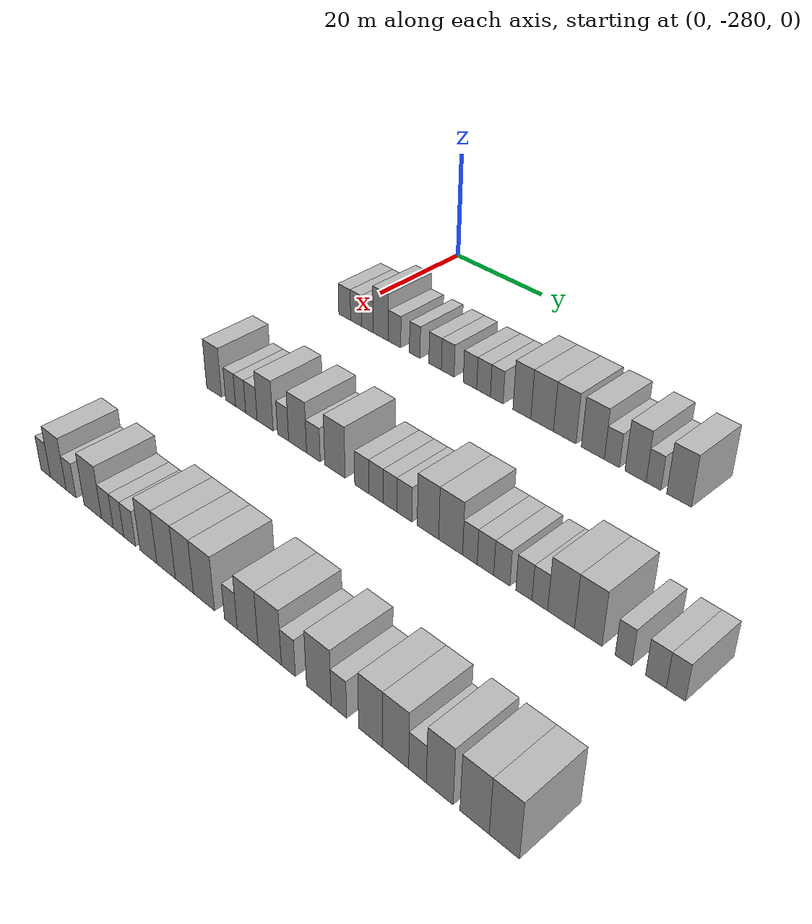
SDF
<sdf version="1.6">
 <world name="default">
  <model name="building_1">
   <static>1</static>
   <pose>25.0000 -278.5228 0 0.000000 0.000000 0.000000</pose>
   <link name="link">
    <pose>0 0 3.00 0 0 0</pose>
    <collision name="collision"><geometry><box><size>10.0000 2.9545 6.0000</size></box></geometry></collision>
    <visual name="visual">
     <cast_shadows>0</cast_shadows>
     <geometry><box><size>10.0000 2.9545 6.0000</size></box></geometry>
     <material>
      <script>
       <uri>model://HANNAS_wall/materials/scripts</uri>
       <uri>model://HANNAS_wall/materials/textures</uri>
       <name>vrc/HANNAS_wall</name>
      </script>
     </material>
    </visual>
   </link>
  </model>
  <model name="building_2">
   <static>1</static>
   <pose>25.0000 -275.7079 0 0.000000 0.000000 0.000000</pose>
   <link name="link">
    <pose>0 0 3.00 0 0 0</pose>
    <collision name="collision"><geometry><box><size>10.0000 2.6752 6.0000</size></box></geometry></collision>
    <visual name="visual">
     <cast_shadows>0</cast_shadows>
     <geometry><box><size>10.0000 2.6752 6.0000</size></box></geometry>
     <material>
      <script>
       <uri>model://HANNAS_wall/materials/scripts</uri>
       <uri>model://HANNAS_wall/materials/textures</uri>
       <name>vrc/HANNAS_wall</name>
      </script>
     </material>
    </visual>
   </link>
  </model>
  <model name="building_3">
   <static>1</static>
   <pose>25.0000 -272.9585 0 0.000000 0.000000 0.000000</pose>
   <link name="link">
    <pose>0 0 3.00 0 0 0</pose>
    <collision name="collision"><geometry><box><size>10.0000 2.8236 6.0000</size></box></geometry></collision>
    <visual name="visual">
     <cast_shadows>0</cast_shadows>
     <geometry><box><size>10.0000 2.8236 6.0000</size></box></geometry>
     <material>
      <script>
       <uri>model://HANNAS_wall/materials/scripts</uri>
       <uri>model://HANNAS_wall/materials/textures</uri>
       <name>vrc/HANNAS_wall</name>
      </script>
     </material>
    </visual>
   </link>
  </model>
  <model name="building_4">
   <static>1</static>
   <pose>25.0000 -269.6810 0 0.000000 0.000000 0.000000</pose>
   <link name="link">
    <pose>0 0 4.50 0 0 0</pose>
    <collision name="collision"><geometry><box><size>10.0000 3.7315 9.0000</size></box></geometry></collision>
    <visual name="visual">
     <cast_shadows>0</cast_shadows>
     <geometry><box><size>10.0000 3.7315 9.0000</size></box></geometry>
     <material>
      <script>
       <uri>model://HANNAS_wall/materials/scripts</uri>
       <uri>model://HANNAS_wall/materials/textures</uri>
       <name>vrc/HANNAS_wall</name>
      </script>
     </material>
    </visual>
   </link>
  </model>
  <model name="building_5">
   <static>1</static>
   <pose>25.0000 -266.3758 0 0.000000 0.000000 0.000000</pose>
   <link name="link">
    <pose>0 0 3.00 0 0 0</pose>
    <collision name="collision"><geometry><box><size>10.0000 2.8788 6.0000</size></box></geometry></collision>
    <visual name="visual">
     <cast_shadows>0</cast_shadows>
     <geometry><box><size>10.0000 2.8788 6.0000</size></box></geometry>
     <material>
      <script>
       <uri>model://HANNAS_wall/materials/scripts</uri>
       <uri>model://HANNAS_wall/materials/textures</uri>
       <name>vrc/HANNAS_wall</name>
      </script>
     </material>
    </visual>
   </link>
  </model>
  <model name="building_6">
   <static>1</static>
   <pose>25.0000 -261.7218 0 0.000000 0.000000 0.000000</pose>
   <link name="link">
    <pose>0 0 3.00 0 0 0</pose>
    <collision name="collision"><geometry><box><size>10.0000 2.4293 6.0000</size></box></geometry></collision>
    <visual name="visual">
     <cast_shadows>0</cast_shadows>
     <geometry><box><size>10.0000 2.4293 6.0000</size></box></geometry>
     <material>
      <script>
       <uri>model://HANNAS_wall/materials/scripts</uri>
       <uri>model://HANNAS_wall/materials/textures</uri>
       <name>vrc/HANNAS_wall</name>
      </script>
     </material>
    </visual>
   </link>
  </model>
  <model name="building_7">
   <static>1</static>
   <pose>25.0000 -257.1109 0 0.000000 0.000000 0.000000</pose>
   <link name="link">
    <pose>0 0 3.00 0 0 0</pose>
    <collision name="collision"><geometry><box><size>10.0000 2.7926 6.0000</size></box></geometry></collision>
    <visual name="visual">
     <cast_shadows>0</cast_shadows>
     <geometry><box><size>10.0000 2.7926 6.0000</size></box></geometry>
     <material>
      <script>
       <uri>model://HANNAS_wall/materials/scripts</uri>
       <uri>model://HANNAS_wall/materials/textures</uri>
       <name>vrc/HANNAS_wall</name>
      </script>
     </material>
    </visual>
   </link>
  </model>
  <model name="building_8">
   <static>1</static>
   <pose>25.0000 -254.3193 0 0.000000 0.000000 0.000000</pose>
   <link name="link">
    <pose>0 0 3.00 0 0 0</pose>
    <collision name="collision"><geometry><box><size>10.0000 2.7906 6.0000</size></box></geometry></collision>
    <visual name="visual">
     <cast_shadows>0</cast_shadows>
     <geometry><box><size>10.0000 2.7906 6.0000</size></box></geometry>
     <material>
      <script>
       <uri>model://HANNAS_wall/materials/scripts</uri>
       <uri>model://HANNAS_wall/materials/textures</uri>
       <name>vrc/HANNAS_wall</name>
      </script>
     </material>
    </visual>
   </link>
  </model>
  <model name="building_9">
   <static>1</static>
   <pose>25.0000 -249.4933 0 0.000000 0.000000 0.000000</pose>
   <link name="link">
    <pose>0 0 3.00 0 0 0</pose>
    <collision name="collision"><geometry><box><size>10.0000 2.8613 6.0000</size></box></geometry></collision>
    <visual name="visual">
     <cast_shadows>0</cast_shadows>
     <geometry><box><size>10.0000 2.8613 6.0000</size></box></geometry>
     <material>
      <script>
       <uri>model://HANNAS_wall/materials/scripts</uri>
       <uri>model://HANNAS_wall/materials/textures</uri>
       <name>vrc/HANNAS_wall</name>
      </script>
     </material>
    </visual>
   </link>
  </model>
  <model name="building_10">
   <static>1</static>
   <pose>25.0000 -246.6186 0 0.000000 0.000000 0.000000</pose>
   <link name="link">
    <pose>0 0 3.00 0 0 0</pose>
    <collision name="collision"><geometry><box><size>10.0000 2.8881 6.0000</size></box></geometry></collision>
    <visual name="visual">
     <cast_shadows>0</cast_shadows>
     <geometry><box><size>10.0000 2.8881 6.0000</size></box></geometry>
     <material>
      <script>
       <uri>model://HANNAS_wall/materials/scripts</uri>
       <uri>model://HANNAS_wall/materials/textures</uri>
       <name>vrc/HANNAS_wall</name>
      </script>
     </material>
    </visual>
   </link>
  </model>
  <model name="building_11">
   <static>1</static>
   <pose>25.0000 -243.8500 0 0.000000 0.000000 0.000000</pose>
   <link name="link">
    <pose>0 0 3.00 0 0 0</pose>
    <collision name="collision"><geometry><box><size>10.0000 2.6490 6.0000</size></box></geometry></collision>
    <visual name="visual">
     <cast_shadows>0</cast_shadows>
     <geometry><box><size>10.0000 2.6490 6.0000</size></box></geometry>
     <material>
      <script>
       <uri>model://HANNAS_wall/materials/scripts</uri>
       <uri>model://HANNAS_wall/materials/textures</uri>
       <name>vrc/HANNAS_wall</name>
      </script>
     </material>
    </visual>
   </link>
  </model>
  <model name="building_12">
   <static>1</static>
   <pose>25.0000 -238.7213 0 0.000000 0.000000 0.000000</pose>
   <link name="link">
    <pose>0 0 4.50 0 0 0</pose>
    <collision name="collision"><geometry><box><size>10.0000 3.6084 9.0000</size></box></geometry></collision>
    <visual name="visual">
     <cast_shadows>0</cast_shadows>
     <geometry><box><size>10.0000 3.6084 9.0000</size></box></geometry>
     <material>
      <script>
       <uri>model://HANNAS_wall/materials/scripts</uri>
       <uri>model://HANNAS_wall/materials/textures</uri>
       <name>vrc/HANNAS_wall</name>
      </script>
     </material>
    </visual>
   </link>
  </model>
  <model name="building_13">
   <static>1</static>
   <pose>25.0000 -234.6921 0 0.000000 0.000000 0.000000</pose>
   <link name="link">
    <pose>0 0 4.50 0 0 0</pose>
    <collision name="collision"><geometry><box><size>10.0000 4.4501 9.0000</size></box></geometry></collision>
    <visual name="visual">
     <cast_shadows>0</cast_shadows>
     <geometry><box><size>10.0000 4.4501 9.0000</size></box></geometry>
     <material>
      <script>
       <uri>model://HANNAS_wall/materials/scripts</uri>
       <uri>model://HANNAS_wall/materials/textures</uri>
       <name>vrc/HANNAS_wall</name>
      </script>
     </material>
    </visual>
   </link>
  </model>
  <model name="building_14">
   <static>1</static>
   <pose>25.0000 -230.3125 0 0.000000 0.000000 0.000000</pose>
   <link name="link">
    <pose>0 0 4.50 0 0 0</pose>
    <collision name="collision"><geometry><box><size>10.0000 4.3090 9.0000</size></box></geometry></collision>
    <visual name="visual">
     <cast_shadows>0</cast_shadows>
     <geometry><box><size>10.0000 4.3090 9.0000</size></box></geometry>
     <material>
      <script>
       <uri>model://HANNAS_wall/materials/scripts</uri>
       <uri>model://HANNAS_wall/materials/textures</uri>
       <name>vrc/HANNAS_wall</name>
      </script>
     </material>
    </visual>
   </link>
  </model>
  <model name="building_15">
   <static>1</static>
   <pose>25.0000 -225.0291 0 0.000000 0.000000 0.000000</pose>
   <link name="link">
    <pose>0 0 4.50 0 0 0</pose>
    <collision name="collision"><geometry><box><size>10.0000 4.2579 9.0000</size></box></geometry></collision>
    <visual name="visual">
     <cast_shadows>0</cast_shadows>
     <geometry><box><size>10.0000 4.2579 9.0000</size></box></geometry>
     <material>
      <script>
       <uri>model://HANNAS_wall/materials/scripts</uri>
       <uri>model://HANNAS_wall/materials/textures</uri>
       <name>vrc/HANNAS_wall</name>
      </script>
     </material>
    </visual>
   </link>
  </model>
  <model name="building_16">
   <static>1</static>
   <pose>25.0000 -221.5347 0 0.000000 0.000000 0.000000</pose>
   <link name="link">
    <pose>0 0 3.00 0 0 0</pose>
    <collision name="collision"><geometry><box><size>10.0000 2.7310 6.0000</size></box></geometry></collision>
    <visual name="visual">
     <cast_shadows>0</cast_shadows>
     <geometry><box><size>10.0000 2.7310 6.0000</size></box></geometry>
     <material>
      <script>
       <uri>model://HANNAS_wall/materials/scripts</uri>
       <uri>model://HANNAS_wall/materials/textures</uri>
       <name>vrc/HANNAS_wall</name>
      </script>
     </material>
    </visual>
   </link>
  </model>
  <model name="building_17">
   <static>1</static>
   <pose>25.0000 -217.3111 0 0.000000 0.000000 0.000000</pose>
   <link name="link">
    <pose>0 0 4.50 0 0 0</pose>
    <collision name="collision"><geometry><box><size>10.0000 3.7161 9.0000</size></box></geometry></collision>
    <visual name="visual">
     <cast_shadows>0</cast_shadows>
     <geometry><box><size>10.0000 3.7161 9.0000</size></box></geometry>
     <material>
      <script>
       <uri>model://HANNAS_wall/materials/scripts</uri>
       <uri>model://HANNAS_wall/materials/textures</uri>
       <name>vrc/HANNAS_wall</name>
      </script>
     </material>
    </visual>
   </link>
  </model>
  <model name="building_18">
   <static>1</static>
   <pose>25.0000 -214.1741 0 0.000000 0.000000 0.000000</pose>
   <link name="link">
    <pose>0 0 3.00 0 0 0</pose>
    <collision name="collision"><geometry><box><size>10.0000 2.5580 6.0000</size></box></geometry></collision>
    <visual name="visual">
     <cast_shadows>0</cast_shadows>
     <geometry><box><size>10.0000 2.5580 6.0000</size></box></geometry>
     <material>
      <script>
       <uri>model://HANNAS_wall/materials/scripts</uri>
       <uri>model://HANNAS_wall/materials/textures</uri>
       <name>vrc/HANNAS_wall</name>
      </script>
     </material>
    </visual>
   </link>
  </model>
  <model name="building_19">
   <static>1</static>
   <pose>25.0000 -209.8170 0 0.000000 0.000000 0.000000</pose>
   <link name="link">
    <pose>0 0 4.50 0 0 0</pose>
    <collision name="collision"><geometry><box><size>10.0000 4.1563 9.0000</size></box></geometry></collision>
    <visual name="visual">
     <cast_shadows>0</cast_shadows>
     <geometry><box><size>10.0000 4.1563 9.0000</size></box></geometry>
     <material>
      <script>
       <uri>model://HANNAS_wall/materials/scripts</uri>
       <uri>model://HANNAS_wall/materials/textures</uri>
       <name>vrc/HANNAS_wall</name>
      </script>
     </material>
    </visual>
   </link>
  </model>
  <model name="building_135">
   <static>1</static>
   <pose>55.0000 -276.1332 0 0.000000 0.000000 0.000000</pose>
   <link name="link">
    <pose>0 0 4.50 0 0 0</pose>
    <collision name="collision"><geometry><box><size>10.0000 3.7336 9.0000</size></box></geometry></collision>
    <visual name="visual">
     <cast_shadows>0</cast_shadows>
     <geometry><box><size>10.0000 3.7336 9.0000</size></box></geometry>
     <material>
      <script>
       <uri>model://HANNAS_wall/materials/scripts</uri>
       <uri>model://HANNAS_wall/materials/textures</uri>
       <name>vrc/HANNAS_wall</name>
      </script>
     </material>
    </visual>
   </link>
  </model>
  <model name="building_136">
   <static>1</static>
   <pose>55.0000 -272.0392 0 0.000000 0.000000 0.000000</pose>
   <link name="link">
    <pose>0 0 3.00 0 0 0</pose>
    <collision name="collision"><geometry><box><size>10.0000 2.4543 6.0000</size></box></geometry></collision>
    <visual name="visual">
     <cast_shadows>0</cast_shadows>
     <geometry><box><size>10.0000 2.4543 6.0000</size></box></geometry>
     <material>
      <script>
       <uri>model://HANNAS_wall/materials/scripts</uri>
       <uri>model://HANNAS_wall/materials/textures</uri>
       <name>vrc/HANNAS_wall</name>
      </script>
     </material>
    </visual>
   </link>
  </model>
  <model name="building_137">
   <static>1</static>
   <pose>55.0000 -269.5822 0 0.000000 0.000000 0.000000</pose>
   <link name="link">
    <pose>0 0 3.00 0 0 0</pose>
    <collision name="collision"><geometry><box><size>10.0000 2.4598 6.0000</size></box></geometry></collision>
    <visual name="visual">
     <cast_shadows>0</cast_shadows>
     <geometry><box><size>10.0000 2.4598 6.0000</size></box></geometry>
     <material>
      <script>
       <uri>model://HANNAS_wall/materials/scripts</uri>
       <uri>model://HANNAS_wall/materials/textures</uri>
       <name>vrc/HANNAS_wall</name>
      </script>
     </material>
    </visual>
   </link>
  </model>
  <model name="building_138">
   <static>1</static>
   <pose>55.0000 -266.9923 0 0.000000 0.000000 0.000000</pose>
   <link name="link">
    <pose>0 0 3.00 0 0 0</pose>
    <collision name="collision"><geometry><box><size>10.0000 2.7200 6.0000</size></box></geometry></collision>
    <visual name="visual">
     <cast_shadows>0</cast_shadows>
     <geometry><box><size>10.0000 2.7200 6.0000</size></box></geometry>
     <material>
      <script>
       <uri>model://HANNAS_wall/materials/scripts</uri>
       <uri>model://HANNAS_wall/materials/textures</uri>
       <name>vrc/HANNAS_wall</name>
      </script>
     </material>
    </visual>
   </link>
  </model>
  <model name="building_139">
   <static>1</static>
   <pose>55.0000 -263.7460 0 0.000000 0.000000 0.000000</pose>
   <link name="link">
    <pose>0 0 4.50 0 0 0</pose>
    <collision name="collision"><geometry><box><size>10.0000 3.7726 9.0000</size></box></geometry></collision>
    <visual name="visual">
     <cast_shadows>0</cast_shadows>
     <geometry><box><size>10.0000 3.7726 9.0000</size></box></geometry>
     <material>
      <script>
       <uri>model://HANNAS_wall/materials/scripts</uri>
       <uri>model://HANNAS_wall/materials/textures</uri>
       <name>vrc/HANNAS_wall</name>
      </script>
     </material>
    </visual>
   </link>
  </model>
  <model name="building_140">
   <static>1</static>
   <pose>55.0000 -259.5889 0 0.000000 0.000000 0.000000</pose>
   <link name="link">
    <pose>0 0 3.00 0 0 0</pose>
    <collision name="collision"><geometry><box><size>10.0000 2.5414 6.0000</size></box></geometry></collision>
    <visual name="visual">
     <cast_shadows>0</cast_shadows>
     <geometry><box><size>10.0000 2.5414 6.0000</size></box></geometry>
     <material>
      <script>
       <uri>model://HANNAS_wall/materials/scripts</uri>
       <uri>model://HANNAS_wall/materials/textures</uri>
       <name>vrc/HANNAS_wall</name>
      </script>
     </material>
    </visual>
   </link>
  </model>
  <model name="building_141">
   <static>1</static>
   <pose>55.0000 -256.3094 0 0.000000 0.000000 0.000000</pose>
   <link name="link">
    <pose>0 0 4.50 0 0 0</pose>
    <collision name="collision"><geometry><box><size>10.0000 4.0177 9.0000</size></box></geometry></collision>
    <visual name="visual">
     <cast_shadows>0</cast_shadows>
     <geometry><box><size>10.0000 4.0177 9.0000</size></box></geometry>
     <material>
      <script>
       <uri>model://HANNAS_wall/materials/scripts</uri>
       <uri>model://HANNAS_wall/materials/textures</uri>
       <name>vrc/HANNAS_wall</name>
      </script>
     </material>
    </visual>
   </link>
  </model>
  <model name="building_142">
   <static>1</static>
   <pose>55.0000 -252.8040 0 0.000000 0.000000 0.000000</pose>
   <link name="link">
    <pose>0 0 3.00 0 0 0</pose>
    <collision name="collision"><geometry><box><size>10.0000 2.9930 6.0000</size></box></geometry></collision>
    <visual name="visual">
     <cast_shadows>0</cast_shadows>
     <geometry><box><size>10.0000 2.9930 6.0000</size></box></geometry>
     <material>
      <script>
       <uri>model://HANNAS_wall/materials/scripts</uri>
       <uri>model://HANNAS_wall/materials/textures</uri>
       <name>vrc/HANNAS_wall</name>
      </script>
     </material>
    </visual>
   </link>
  </model>
  <model name="building_143">
   <static>1</static>
   <pose>55.0000 -248.1495 0 0.000000 0.000000 0.000000</pose>
   <link name="link">
    <pose>0 0 4.50 0 0 0</pose>
    <collision name="collision"><geometry><box><size>10.0000 4.3160 9.0000</size></box></geometry></collision>
    <visual name="visual">
     <cast_shadows>0</cast_shadows>
     <geometry><box><size>10.0000 4.3160 9.0000</size></box></geometry>
     <material>
      <script>
       <uri>model://HANNAS_wall/materials/scripts</uri>
       <uri>model://HANNAS_wall/materials/textures</uri>
       <name>vrc/HANNAS_wall</name>
      </script>
     </material>
    </visual>
   </link>
  </model>
  <model name="building_144">
   <static>1</static>
   <pose>55.0000 -242.5414 0 0.000000 0.000000 0.000000</pose>
   <link name="link">
    <pose>0 0 3.00 0 0 0</pose>
    <collision name="collision"><geometry><box><size>10.0000 2.9002 6.0000</size></box></geometry></collision>
    <visual name="visual">
     <cast_shadows>0</cast_shadows>
     <geometry><box><size>10.0000 2.9002 6.0000</size></box></geometry>
     <material>
      <script>
       <uri>model://HANNAS_wall/materials/scripts</uri>
       <uri>model://HANNAS_wall/materials/textures</uri>
       <name>vrc/HANNAS_wall</name>
      </script>
     </material>
    </visual>
   </link>
  </model>
  <model name="building_145">
   <static>1</static>
   <pose>55.0000 -239.6354 0 0.000000 0.000000 0.000000</pose>
   <link name="link">
    <pose>0 0 3.00 0 0 0</pose>
    <collision name="collision"><geometry><box><size>10.0000 2.9119 6.0000</size></box></geometry></collision>
    <visual name="visual">
     <cast_shadows>0</cast_shadows>
     <geometry><box><size>10.0000 2.9119 6.0000</size></box></geometry>
     <material>
      <script>
       <uri>model://HANNAS_wall/materials/scripts</uri>
       <uri>model://HANNAS_wall/materials/textures</uri>
       <name>vrc/HANNAS_wall</name>
      </script>
     </material>
    </visual>
   </link>
  </model>
  <model name="building_146">
   <static>1</static>
   <pose>55.0000 -236.8470 0 0.000000 0.000000 0.000000</pose>
   <link name="link">
    <pose>0 0 3.00 0 0 0</pose>
    <collision name="collision"><geometry><box><size>10.0000 2.6650 6.0000</size></box></geometry></collision>
    <visual name="visual">
     <cast_shadows>0</cast_shadows>
     <geometry><box><size>10.0000 2.6650 6.0000</size></box></geometry>
     <material>
      <script>
       <uri>model://HANNAS_wall/materials/scripts</uri>
       <uri>model://HANNAS_wall/materials/textures</uri>
       <name>vrc/HANNAS_wall</name>
      </script>
     </material>
    </visual>
   </link>
  </model>
  <model name="building_147">
   <static>1</static>
   <pose>55.0000 -234.0301 0 0.000000 0.000000 0.000000</pose>
   <link name="link">
    <pose>0 0 3.00 0 0 0</pose>
    <collision name="collision"><geometry><box><size>10.0000 2.9688 6.0000</size></box></geometry></collision>
    <visual name="visual">
     <cast_shadows>0</cast_shadows>
     <geometry><box><size>10.0000 2.9688 6.0000</size></box></geometry>
     <material>
      <script>
       <uri>model://HANNAS_wall/materials/scripts</uri>
       <uri>model://HANNAS_wall/materials/textures</uri>
       <name>vrc/HANNAS_wall</name>
      </script>
     </material>
    </visual>
   </link>
  </model>
  <model name="building_148">
   <static>1</static>
   <pose>55.0000 -229.5263 0 0.000000 0.000000 0.000000</pose>
   <link name="link">
    <pose>0 0 4.50 0 0 0</pose>
    <collision name="collision"><geometry><box><size>10.0000 4.0388 9.0000</size></box></geometry></collision>
    <visual name="visual">
     <cast_shadows>0</cast_shadows>
     <geometry><box><size>10.0000 4.0388 9.0000</size></box></geometry>
     <material>
      <script>
       <uri>model://HANNAS_wall/materials/scripts</uri>
       <uri>model://HANNAS_wall/materials/textures</uri>
       <name>vrc/HANNAS_wall</name>
      </script>
     </material>
    </visual>
   </link>
  </model>
  <model name="building_149">
   <static>1</static>
   <pose>55.0000 -225.3136 0 0.000000 0.000000 0.000000</pose>
   <link name="link">
    <pose>0 0 4.50 0 0 0</pose>
    <collision name="collision"><geometry><box><size>10.0000 4.3866 9.0000</size></box></geometry></collision>
    <visual name="visual">
     <cast_shadows>0</cast_shadows>
     <geometry><box><size>10.0000 4.3866 9.0000</size></box></geometry>
     <material>
      <script>
       <uri>model://HANNAS_wall/materials/scripts</uri>
       <uri>model://HANNAS_wall/materials/textures</uri>
       <name>vrc/HANNAS_wall</name>
      </script>
     </material>
    </visual>
   </link>
  </model>
  <model name="building_150">
   <static>1</static>
   <pose>55.0000 -221.8194 0 0.000000 0.000000 0.000000</pose>
   <link name="link">
    <pose>0 0 3.00 0 0 0</pose>
    <collision name="collision"><geometry><box><size>10.0000 2.6018 6.0000</size></box></geometry></collision>
    <visual name="visual">
     <cast_shadows>0</cast_shadows>
     <geometry><box><size>10.0000 2.6018 6.0000</size></box></geometry>
     <material>
      <script>
       <uri>model://HANNAS_wall/materials/scripts</uri>
       <uri>model://HANNAS_wall/materials/textures</uri>
       <name>vrc/HANNAS_wall</name>
      </script>
     </material>
    </visual>
   </link>
  </model>
  <model name="building_151">
   <static>1</static>
   <pose>55.0000 -219.0588 0 0.000000 0.000000 0.000000</pose>
   <link name="link">
    <pose>0 0 3.00 0 0 0</pose>
    <collision name="collision"><geometry><box><size>10.0000 2.9194 6.0000</size></box></geometry></collision>
    <visual name="visual">
     <cast_shadows>0</cast_shadows>
     <geometry><box><size>10.0000 2.9194 6.0000</size></box></geometry>
     <material>
      <script>
       <uri>model://HANNAS_wall/materials/scripts</uri>
       <uri>model://HANNAS_wall/materials/textures</uri>
       <name>vrc/HANNAS_wall</name>
      </script>
     </material>
    </visual>
   </link>
  </model>
  <model name="building_152">
   <static>1</static>
   <pose>55.0000 -216.2034 0 0.000000 0.000000 0.000000</pose>
   <link name="link">
    <pose>0 0 3.00 0 0 0</pose>
    <collision name="collision"><geometry><box><size>10.0000 2.7915 6.0000</size></box></geometry></collision>
    <visual name="visual">
     <cast_shadows>0</cast_shadows>
     <geometry><box><size>10.0000 2.7915 6.0000</size></box></geometry>
     <material>
      <script>
       <uri>model://HANNAS_wall/materials/scripts</uri>
       <uri>model://HANNAS_wall/materials/textures</uri>
       <name>vrc/HANNAS_wall</name>
      </script>
     </material>
    </visual>
   </link>
  </model>
  <model name="building_153">
   <static>1</static>
   <pose>55.0000 -212.4528 0 0.000000 0.000000 0.000000</pose>
   <link name="link">
    <pose>0 0 3.00 0 0 0</pose>
    <collision name="collision"><geometry><box><size>10.0000 2.7097 6.0000</size></box></geometry></collision>
    <visual name="visual">
     <cast_shadows>0</cast_shadows>
     <geometry><box><size>10.0000 2.7097 6.0000</size></box></geometry>
     <material>
      <script>
       <uri>model://HANNAS_wall/materials/scripts</uri>
       <uri>model://HANNAS_wall/materials/textures</uri>
       <name>vrc/HANNAS_wall</name>
      </script>
     </material>
    </visual>
   </link>
  </model>
  <model name="building_154">
   <static>1</static>
   <pose>55.0000 -209.8069 0 0.000000 0.000000 0.000000</pose>
   <link name="link">
    <pose>0 0 3.00 0 0 0</pose>
    <collision name="collision"><geometry><box><size>10.0000 2.5821 6.0000</size></box></geometry></collision>
    <visual name="visual">
     <cast_shadows>0</cast_shadows>
     <geometry><box><size>10.0000 2.5821 6.0000</size></box></geometry>
     <material>
      <script>
       <uri>model://HANNAS_wall/materials/scripts</uri>
       <uri>model://HANNAS_wall/materials/textures</uri>
       <name>vrc/HANNAS_wall</name>
      </script>
     </material>
    </visual>
   </link>
  </model>
  <model name="building_155">
   <static>1</static>
   <pose>55.0000 -206.3537 0 0.000000 0.000000 0.000000</pose>
   <link name="link">
    <pose>0 0 4.50 0 0 0</pose>
    <collision name="collision"><geometry><box><size>10.0000 4.3242 9.0000</size></box></geometry></collision>
    <visual name="visual">
     <cast_shadows>0</cast_shadows>
     <geometry><box><size>10.0000 4.3242 9.0000</size></box></geometry>
     <material>
      <script>
       <uri>model://HANNAS_wall/materials/scripts</uri>
       <uri>model://HANNAS_wall/materials/textures</uri>
       <name>vrc/HANNAS_wall</name>
      </script>
     </material>
    </visual>
   </link>
  </model>
  <model name="building_156">
   <static>1</static>
   <pose>55.0000 -202.0528 0 0.000000 0.000000 0.000000</pose>
   <link name="link">
    <pose>0 0 4.50 0 0 0</pose>
    <collision name="collision"><geometry><box><size>10.0000 4.2777 9.0000</size></box></geometry></collision>
    <visual name="visual">
     <cast_shadows>0</cast_shadows>
     <geometry><box><size>10.0000 4.2777 9.0000</size></box></geometry>
     <material>
      <script>
       <uri>model://HANNAS_wall/materials/scripts</uri>
       <uri>model://HANNAS_wall/materials/textures</uri>
       <name>vrc/HANNAS_wall</name>
      </script>
     </material>
    </visual>
   </link>
  </model>
  <model name="building_157">
   <static>1</static>
   <pose>55.0000 -196.6554 0 0.000000 0.000000 0.000000</pose>
   <link name="link">
    <pose>0 0 3.00 0 0 0</pose>
    <collision name="collision"><geometry><box><size>10.0000 2.5171 6.0000</size></box></geometry></collision>
    <visual name="visual">
     <cast_shadows>0</cast_shadows>
     <geometry><box><size>10.0000 2.5171 6.0000</size></box></geometry>
     <material>
      <script>
       <uri>model://HANNAS_wall/materials/scripts</uri>
       <uri>model://HANNAS_wall/materials/textures</uri>
       <name>vrc/HANNAS_wall</name>
      </script>
     </material>
    </visual>
   </link>
  </model>
  <model name="building_158">
   <static>1</static>
   <pose>55.0000 -191.9027 0 0.000000 0.000000 0.000000</pose>
   <link name="link">
    <pose>0 0 3.00 0 0 0</pose>
    <collision name="collision"><geometry><box><size>10.0000 2.9884 6.0000</size></box></geometry></collision>
    <visual name="visual">
     <cast_shadows>0</cast_shadows>
     <geometry><box><size>10.0000 2.9884 6.0000</size></box></geometry>
     <material>
      <script>
       <uri>model://HANNAS_wall/materials/scripts</uri>
       <uri>model://HANNAS_wall/materials/textures</uri>
       <name>vrc/HANNAS_wall</name>
      </script>
     </material>
    </visual>
   </link>
  </model>
  <model name="building_159">
   <static>1</static>
   <pose>55.0000 -189.0532 0 0.000000 0.000000 0.000000</pose>
   <link name="link">
    <pose>0 0 3.00 0 0 0</pose>
    <collision name="collision"><geometry><box><size>10.0000 2.7108 6.0000</size></box></geometry></collision>
    <visual name="visual">
     <cast_shadows>0</cast_shadows>
     <geometry><box><size>10.0000 2.7108 6.0000</size></box></geometry>
     <material>
      <script>
       <uri>model://HANNAS_wall/materials/scripts</uri>
       <uri>model://HANNAS_wall/materials/textures</uri>
       <name>vrc/HANNAS_wall</name>
      </script>
     </material>
    </visual>
   </link>
  </model>
  <model name="building_275">
   <static>1</static>
   <pose>85.0000 -276.7573 0 0.000000 0.000000 0.000000</pose>
   <link name="link">
    <pose>0 0 3.00 0 0 0</pose>
    <collision name="collision"><geometry><box><size>10.0000 2.4853 6.0000</size></box></geometry></collision>
    <visual name="visual">
     <cast_shadows>0</cast_shadows>
     <geometry><box><size>10.0000 2.4853 6.0000</size></box></geometry>
     <material>
      <script>
       <uri>model://HANNAS_wall/materials/scripts</uri>
       <uri>model://HANNAS_wall/materials/textures</uri>
       <name>vrc/HANNAS_wall</name>
      </script>
     </material>
    </visual>
   </link>
  </model>
  <model name="building_276">
   <static>1</static>
   <pose>85.0000 -273.5094 0 0.000000 0.000000 0.000000</pose>
   <link name="link">
    <pose>0 0 4.50 0 0 0</pose>
    <collision name="collision"><geometry><box><size>10.0000 4.0104 9.0000</size></box></geometry></collision>
    <visual name="visual">
     <cast_shadows>0</cast_shadows>
     <geometry><box><size>10.0000 4.0104 9.0000</size></box></geometry>
     <material>
      <script>
       <uri>model://HANNAS_wall/materials/scripts</uri>
       <uri>model://HANNAS_wall/materials/textures</uri>
       <name>vrc/HANNAS_wall</name>
      </script>
     </material>
    </visual>
   </link>
  </model>
  <model name="building_277">
   <static>1</static>
   <pose>85.0000 -270.2386 0 0.000000 0.000000 0.000000</pose>
   <link name="link">
    <pose>0 0 3.00 0 0 0</pose>
    <collision name="collision"><geometry><box><size>10.0000 2.5312 6.0000</size></box></geometry></collision>
    <visual name="visual">
     <cast_shadows>0</cast_shadows>
     <geometry><box><size>10.0000 2.5312 6.0000</size></box></geometry>
     <material>
      <script>
       <uri>model://HANNAS_wall/materials/scripts</uri>
       <uri>model://HANNAS_wall/materials/textures</uri>
       <name>vrc/HANNAS_wall</name>
      </script>
     </material>
    </visual>
   </link>
  </model>
  <model name="building_278">
   <static>1</static>
   <pose>85.0000 -264.8406 0 0.000000 0.000000 0.000000</pose>
   <link name="link">
    <pose>0 0 4.50 0 0 0</pose>
    <collision name="collision"><geometry><box><size>10.0000 4.2650 9.0000</size></box></geometry></collision>
    <visual name="visual">
     <cast_shadows>0</cast_shadows>
     <geometry><box><size>10.0000 4.2650 9.0000</size></box></geometry>
     <material>
      <script>
       <uri>model://HANNAS_wall/materials/scripts</uri>
       <uri>model://HANNAS_wall/materials/textures</uri>
       <name>vrc/HANNAS_wall</name>
      </script>
     </material>
    </visual>
   </link>
  </model>
  <model name="building_279">
   <static>1</static>
   <pose>85.0000 -261.3044 0 0.000000 0.000000 0.000000</pose>
   <link name="link">
    <pose>0 0 3.00 0 0 0</pose>
    <collision name="collision"><geometry><box><size>10.0000 2.8075 6.0000</size></box></geometry></collision>
    <visual name="visual">
     <cast_shadows>0</cast_shadows>
     <geometry><box><size>10.0000 2.8075 6.0000</size></box></geometry>
     <material>
      <script>
       <uri>model://HANNAS_wall/materials/scripts</uri>
       <uri>model://HANNAS_wall/materials/textures</uri>
       <name>vrc/HANNAS_wall</name>
      </script>
     </material>
    </visual>
   </link>
  </model>
  <model name="building_280">
   <static>1</static>
   <pose>85.0000 -258.6777 0 0.000000 0.000000 0.000000</pose>
   <link name="link">
    <pose>0 0 3.00 0 0 0</pose>
    <collision name="collision"><geometry><box><size>10.0000 2.4460 6.0000</size></box></geometry></collision>
    <visual name="visual">
     <cast_shadows>0</cast_shadows>
     <geometry><box><size>10.0000 2.4460 6.0000</size></box></geometry>
     <material>
      <script>
       <uri>model://HANNAS_wall/materials/scripts</uri>
       <uri>model://HANNAS_wall/materials/textures</uri>
       <name>vrc/HANNAS_wall</name>
      </script>
     </material>
    </visual>
   </link>
  </model>
  <model name="building_281">
   <static>1</static>
   <pose>85.0000 -256.0956 0 0.000000 0.000000 0.000000</pose>
   <link name="link">
    <pose>0 0 3.00 0 0 0</pose>
    <collision name="collision"><geometry><box><size>10.0000 2.7181 6.0000</size></box></geometry></collision>
    <visual name="visual">
     <cast_shadows>0</cast_shadows>
     <geometry><box><size>10.0000 2.7181 6.0000</size></box></geometry>
     <material>
      <script>
       <uri>model://HANNAS_wall/materials/scripts</uri>
       <uri>model://HANNAS_wall/materials/textures</uri>
       <name>vrc/HANNAS_wall</name>
      </script>
     </material>
    </visual>
   </link>
  </model>
  <model name="building_282">
   <static>1</static>
   <pose>85.0000 -251.8311 0 0.000000 0.000000 0.000000</pose>
   <link name="link">
    <pose>0 0 4.50 0 0 0</pose>
    <collision name="collision"><geometry><box><size>10.0000 3.8110 9.0000</size></box></geometry></collision>
    <visual name="visual">
     <cast_shadows>0</cast_shadows>
     <geometry><box><size>10.0000 3.8110 9.0000</size></box></geometry>
     <material>
      <script>
       <uri>model://HANNAS_wall/materials/scripts</uri>
       <uri>model://HANNAS_wall/materials/textures</uri>
       <name>vrc/HANNAS_wall</name>
      </script>
     </material>
    </visual>
   </link>
  </model>
  <model name="building_283">
   <static>1</static>
   <pose>85.0000 -247.9070 0 0.000000 0.000000 0.000000</pose>
   <link name="link">
    <pose>0 0 4.50 0 0 0</pose>
    <collision name="collision"><geometry><box><size>10.0000 4.0372 9.0000</size></box></geometry></collision>
    <visual name="visual">
     <cast_shadows>0</cast_shadows>
     <geometry><box><size>10.0000 4.0372 9.0000</size></box></geometry>
     <material>
      <script>
       <uri>model://HANNAS_wall/materials/scripts</uri>
       <uri>model://HANNAS_wall/materials/textures</uri>
       <name>vrc/HANNAS_wall</name>
      </script>
     </material>
    </visual>
   </link>
  </model>
  <model name="building_284">
   <static>1</static>
   <pose>85.0000 -243.9774 0 0.000000 0.000000 0.000000</pose>
   <link name="link">
    <pose>0 0 4.50 0 0 0</pose>
    <collision name="collision"><geometry><box><size>10.0000 3.8220 9.0000</size></box></geometry></collision>
    <visual name="visual">
     <cast_shadows>0</cast_shadows>
     <geometry><box><size>10.0000 3.8220 9.0000</size></box></geometry>
     <material>
      <script>
       <uri>model://HANNAS_wall/materials/scripts</uri>
       <uri>model://HANNAS_wall/materials/textures</uri>
       <name>vrc/HANNAS_wall</name>
      </script>
     </material>
    </visual>
   </link>
  </model>
  <model name="building_285">
   <static>1</static>
   <pose>85.0000 -239.8963 0 0.000000 0.000000 0.000000</pose>
   <link name="link">
    <pose>0 0 4.50 0 0 0</pose>
    <collision name="collision"><geometry><box><size>10.0000 4.3402 9.0000</size></box></geometry></collision>
    <visual name="visual">
     <cast_shadows>0</cast_shadows>
     <geometry><box><size>10.0000 4.3402 9.0000</size></box></geometry>
     <material>
      <script>
       <uri>model://HANNAS_wall/materials/scripts</uri>
       <uri>model://HANNAS_wall/materials/textures</uri>
       <name>vrc/HANNAS_wall</name>
      </script>
     </material>
    </visual>
   </link>
  </model>
  <model name="building_286">
   <static>1</static>
   <pose>85.0000 -234.4709 0 0.000000 0.000000 0.000000</pose>
   <link name="link">
    <pose>0 0 3.00 0 0 0</pose>
    <collision name="collision"><geometry><box><size>10.0000 2.5106 6.0000</size></box></geometry></collision>
    <visual name="visual">
     <cast_shadows>0</cast_shadows>
     <geometry><box><size>10.0000 2.5106 6.0000</size></box></geometry>
     <material>
      <script>
       <uri>model://HANNAS_wall/materials/scripts</uri>
       <uri>model://HANNAS_wall/materials/textures</uri>
       <name>vrc/HANNAS_wall</name>
      </script>
     </material>
    </visual>
   </link>
  </model>
  <model name="building_287">
   <static>1</static>
   <pose>85.0000 -231.2100 0 0.000000 0.000000 0.000000</pose>
   <link name="link">
    <pose>0 0 4.50 0 0 0</pose>
    <collision name="collision"><geometry><box><size>10.0000 4.0112 9.0000</size></box></geometry></collision>
    <visual name="visual">
     <cast_shadows>0</cast_shadows>
     <geometry><box><size>10.0000 4.0112 9.0000</size></box></geometry>
     <material>
      <script>
       <uri>model://HANNAS_wall/materials/scripts</uri>
       <uri>model://HANNAS_wall/materials/textures</uri>
       <name>vrc/HANNAS_wall</name>
      </script>
     </material>
    </visual>
   </link>
  </model>
  <model name="building_288">
   <static>1</static>
   <pose>85.0000 -227.0110 0 0.000000 0.000000 0.000000</pose>
   <link name="link">
    <pose>0 0 4.50 0 0 0</pose>
    <collision name="collision"><geometry><box><size>10.0000 4.3869 9.0000</size></box></geometry></collision>
    <visual name="visual">
     <cast_shadows>0</cast_shadows>
     <geometry><box><size>10.0000 4.3869 9.0000</size></box></geometry>
     <material>
      <script>
       <uri>model://HANNAS_wall/materials/scripts</uri>
       <uri>model://HANNAS_wall/materials/textures</uri>
       <name>vrc/HANNAS_wall</name>
      </script>
     </material>
    </visual>
   </link>
  </model>
  <model name="building_289">
   <static>1</static>
   <pose>85.0000 -223.5439 0 0.000000 0.000000 0.000000</pose>
   <link name="link">
    <pose>0 0 3.00 0 0 0</pose>
    <collision name="collision"><geometry><box><size>10.0000 2.5473 6.0000</size></box></geometry></collision>
    <visual name="visual">
     <cast_shadows>0</cast_shadows>
     <geometry><box><size>10.0000 2.5473 6.0000</size></box></geometry>
     <material>
      <script>
       <uri>model://HANNAS_wall/materials/scripts</uri>
       <uri>model://HANNAS_wall/materials/textures</uri>
       <name>vrc/HANNAS_wall</name>
      </script>
     </material>
    </visual>
   </link>
  </model>
  <model name="building_290">
   <static>1</static>
   <pose>85.0000 -218.1075 0 0.000000 0.000000 0.000000</pose>
   <link name="link">
    <pose>0 0 4.50 0 0 0</pose>
    <collision name="collision"><geometry><box><size>10.0000 4.3256 9.0000</size></box></geometry></collision>
    <visual name="visual">
     <cast_shadows>0</cast_shadows>
     <geometry><box><size>10.0000 4.3256 9.0000</size></box></geometry>
     <material>
      <script>
       <uri>model://HANNAS_wall/materials/scripts</uri>
       <uri>model://HANNAS_wall/materials/textures</uri>
       <name>vrc/HANNAS_wall</name>
      </script>
     </material>
    </visual>
   </link>
  </model>
  <model name="building_291">
   <static>1</static>
   <pose>85.0000 -214.6303 0 0.000000 0.000000 0.000000</pose>
   <link name="link">
    <pose>0 0 3.00 0 0 0</pose>
    <collision name="collision"><geometry><box><size>10.0000 2.6286 6.0000</size></box></geometry></collision>
    <visual name="visual">
     <cast_shadows>0</cast_shadows>
     <geometry><box><size>10.0000 2.6286 6.0000</size></box></geometry>
     <material>
      <script>
       <uri>model://HANNAS_wall/materials/scripts</uri>
       <uri>model://HANNAS_wall/materials/textures</uri>
       <name>vrc/HANNAS_wall</name>
      </script>
     </material>
    </visual>
   </link>
  </model>
  <model name="building_292">
   <static>1</static>
   <pose>85.0000 -209.3607 0 0.000000 0.000000 0.000000</pose>
   <link name="link">
    <pose>0 0 4.50 0 0 0</pose>
    <collision name="collision"><geometry><box><size>10.0000 3.9106 9.0000</size></box></geometry></collision>
    <visual name="visual">
     <cast_shadows>0</cast_shadows>
     <geometry><box><size>10.0000 3.9106 9.0000</size></box></geometry>
     <material>
      <script>
       <uri>model://HANNAS_wall/materials/scripts</uri>
       <uri>model://HANNAS_wall/materials/textures</uri>
       <name>vrc/HANNAS_wall</name>
      </script>
     </material>
    </visual>
   </link>
  </model>
  <model name="building_293">
   <static>1</static>
   <pose>85.0000 -205.3385 0 0.000000 0.000000 0.000000</pose>
   <link name="link">
    <pose>0 0 4.50 0 0 0</pose>
    <collision name="collision"><geometry><box><size>10.0000 4.1338 9.0000</size></box></geometry></collision>
    <visual name="visual">
     <cast_shadows>0</cast_shadows>
     <geometry><box><size>10.0000 4.1338 9.0000</size></box></geometry>
     <material>
      <script>
       <uri>model://HANNAS_wall/materials/scripts</uri>
       <uri>model://HANNAS_wall/materials/textures</uri>
       <name>vrc/HANNAS_wall</name>
      </script>
     </material>
    </visual>
   </link>
  </model>
  <model name="building_294">
   <static>1</static>
   <pose>85.0000 -201.9188 0 0.000000 0.000000 0.000000</pose>
   <link name="link">
    <pose>0 0 3.00 0 0 0</pose>
    <collision name="collision"><geometry><box><size>10.0000 2.7056 6.0000</size></box></geometry></collision>
    <visual name="visual">
     <cast_shadows>0</cast_shadows>
     <geometry><box><size>10.0000 2.7056 6.0000</size></box></geometry>
     <material>
      <script>
       <uri>model://HANNAS_wall/materials/scripts</uri>
       <uri>model://HANNAS_wall/materials/textures</uri>
       <name>vrc/HANNAS_wall</name>
      </script>
     </material>
    </visual>
   </link>
  </model>
  <model name="building_295">
   <static>1</static>
   <pose>85.0000 -198.5593 0 0.000000 0.000000 0.000000</pose>
   <link name="link">
    <pose>0 0 4.50 0 0 0</pose>
    <collision name="collision"><geometry><box><size>10.0000 4.0134 9.0000</size></box></geometry></collision>
    <visual name="visual">
     <cast_shadows>0</cast_shadows>
     <geometry><box><size>10.0000 4.0134 9.0000</size></box></geometry>
     <material>
      <script>
       <uri>model://HANNAS_wall/materials/scripts</uri>
       <uri>model://HANNAS_wall/materials/textures</uri>
       <name>vrc/HANNAS_wall</name>
      </script>
     </material>
    </visual>
   </link>
  </model>
  <model name="building_296">
   <static>1</static>
   <pose>85.0000 -193.4504 0 0.000000 0.000000 0.000000</pose>
   <link name="link">
    <pose>0 0 4.50 0 0 0</pose>
    <collision name="collision"><geometry><box><size>10.0000 4.2044 9.0000</size></box></geometry></collision>
    <visual name="visual">
     <cast_shadows>0</cast_shadows>
     <geometry><box><size>10.0000 4.2044 9.0000</size></box></geometry>
     <material>
      <script>
       <uri>model://HANNAS_wall/materials/scripts</uri>
       <uri>model://HANNAS_wall/materials/textures</uri>
       <name>vrc/HANNAS_wall</name>
      </script>
     </material>
    </visual>
   </link>
  </model>
  <model name="building_297">
   <static>1</static>
   <pose>85.0000 -189.2538 0 0.000000 0.000000 0.000000</pose>
   <link name="link">
    <pose>0 0 4.50 0 0 0</pose>
    <collision name="collision"><geometry><box><size>10.0000 4.1888 9.0000</size></box></geometry></collision>
    <visual name="visual">
     <cast_shadows>0</cast_shadows>
     <geometry><box><size>10.0000 4.1888 9.0000</size></box></geometry>
     <material>
      <script>
       <uri>model://HANNAS_wall/materials/scripts</uri>
       <uri>model://HANNAS_wall/materials/textures</uri>
       <name>vrc/HANNAS_wall</name>
      </script>
     </material>
    </visual>
   </link>
  </model>
 </world>
</sdf>
